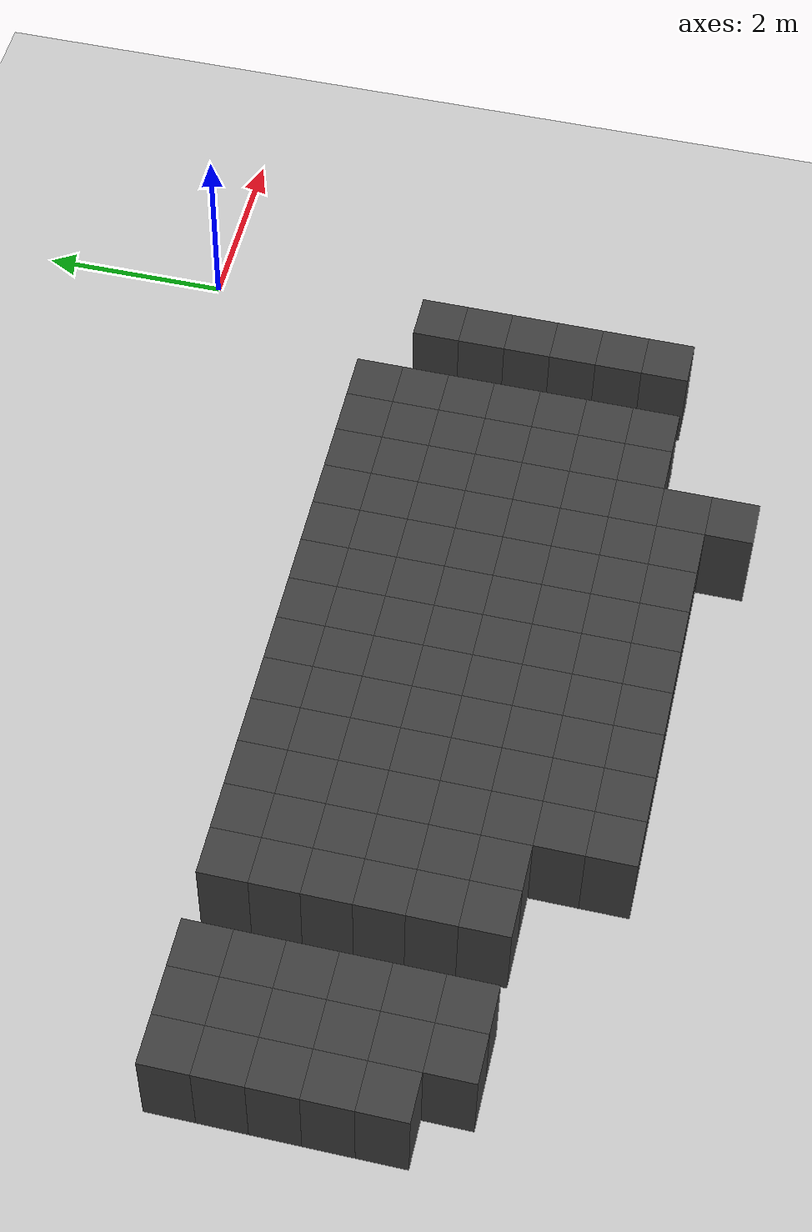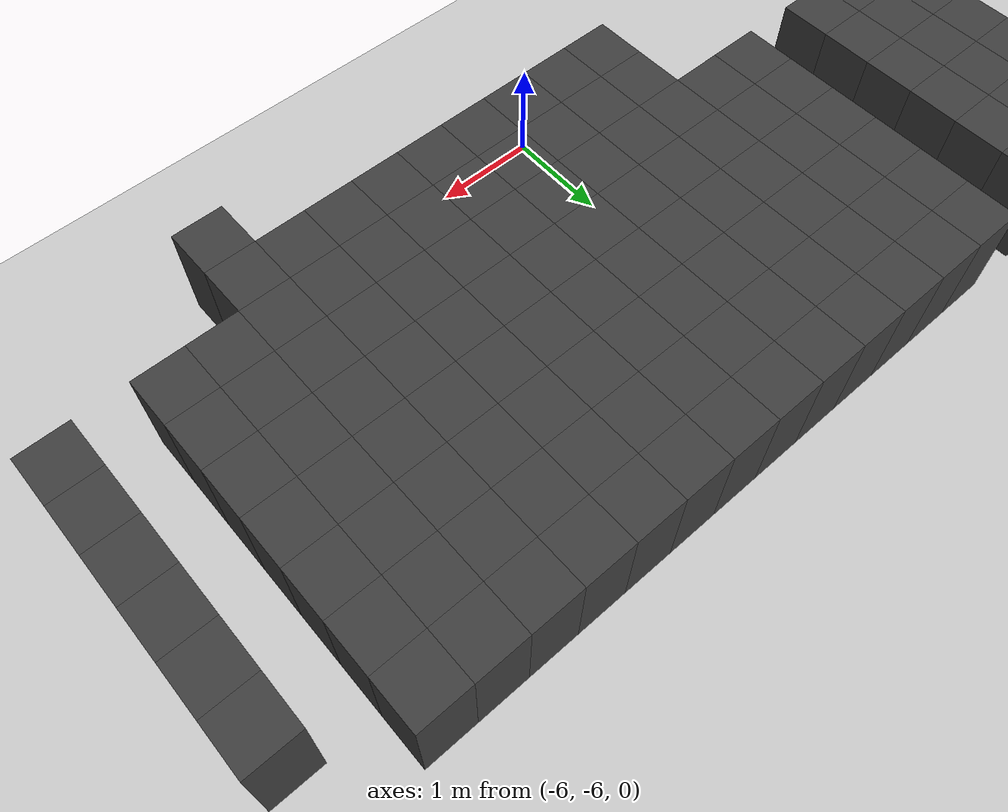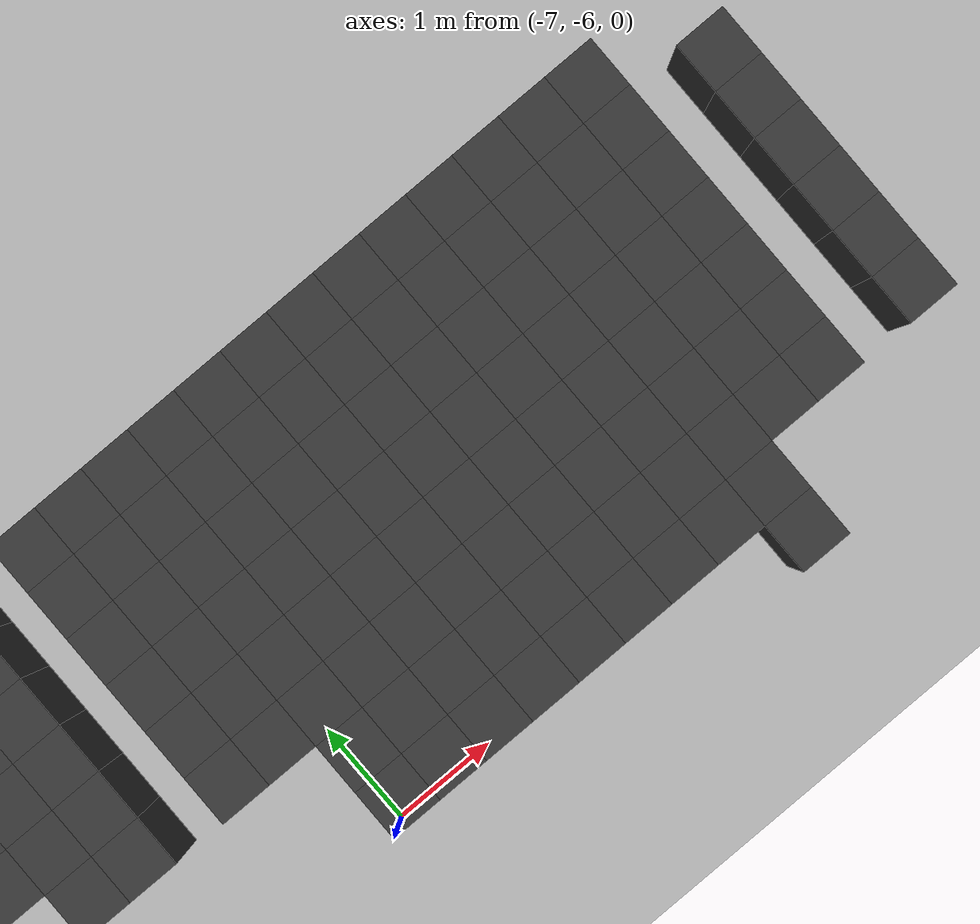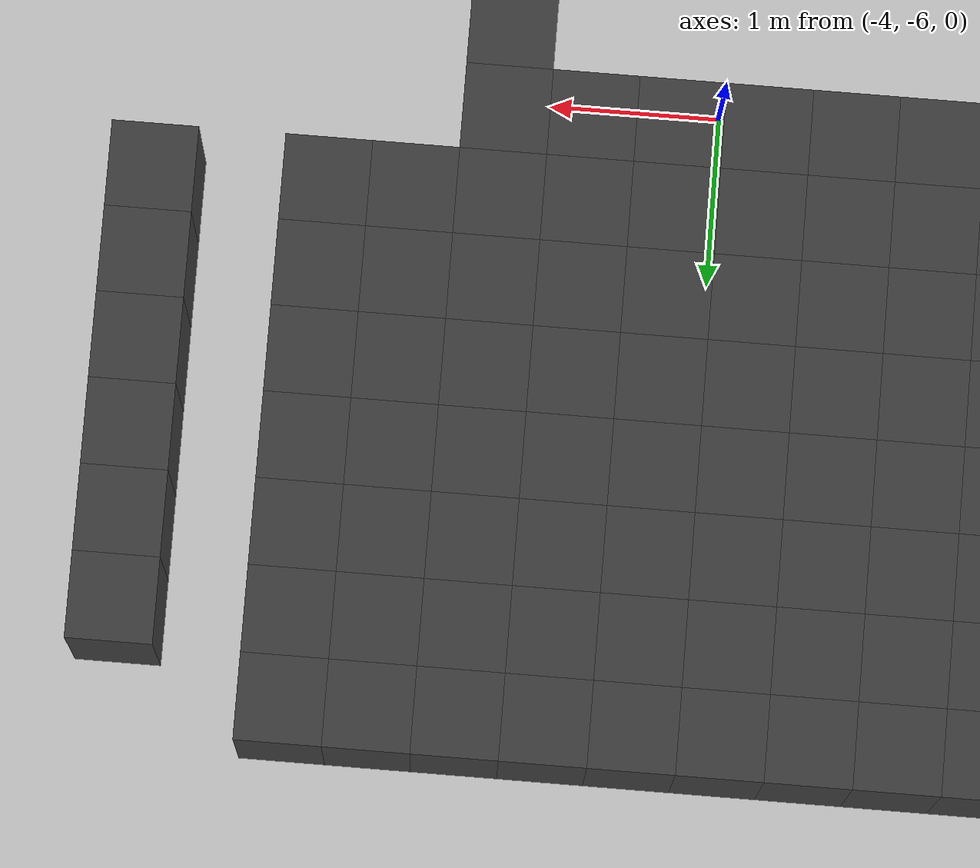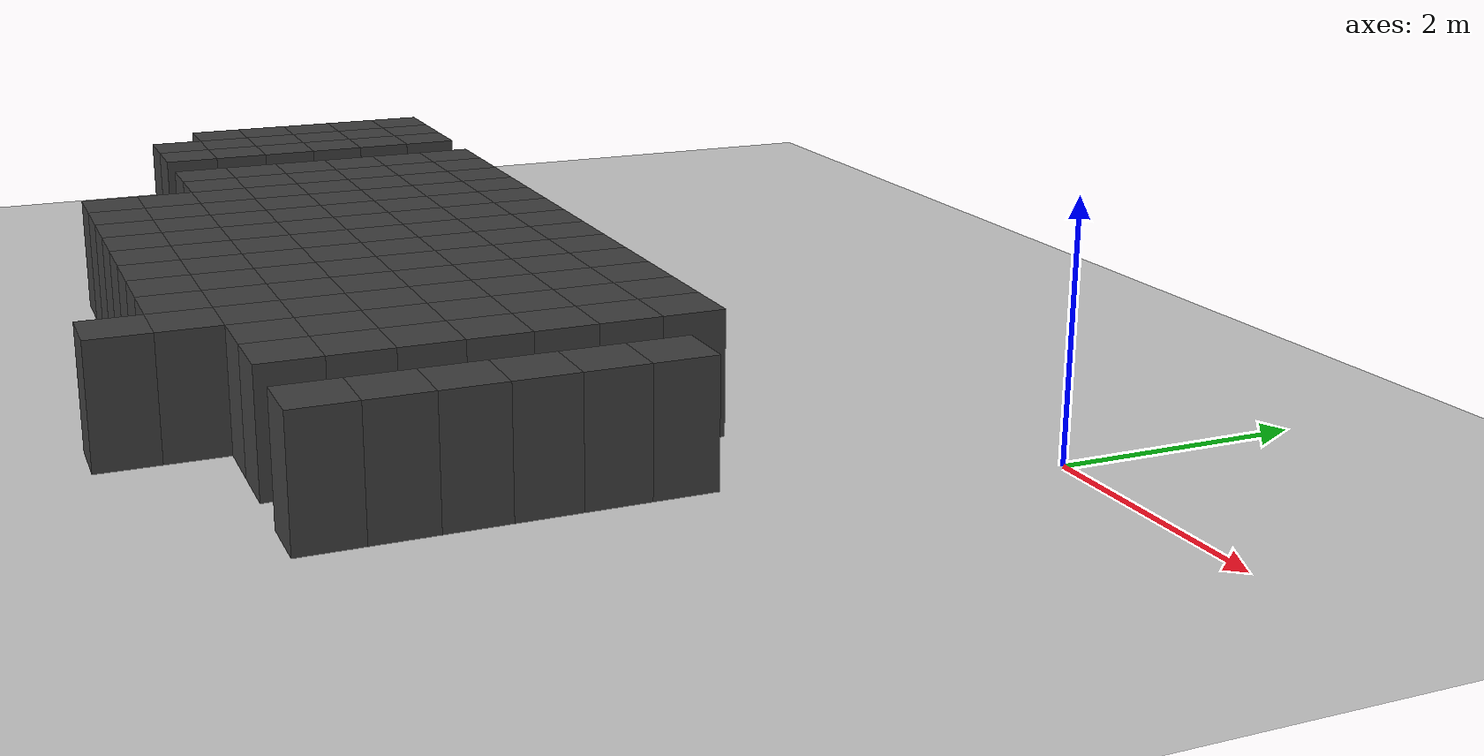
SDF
<sdf version="1.7">
 <world name="map_14547">
  <model name="ground_plane">
   <static>true</static>
   <link name="link">
    <collision name="collision">
     <geometry><plane><normal>0 0 1</normal><size>200 200</size></plane></geometry>
    </collision>
    <visual name="visual">
     <geometry><plane><normal>0 0 1</normal><size>200 200</size></plane></geometry>
     <material><ambient>0.8 0.8 0.8 1</ambient><diffuse>0.8 0.8 0.8 1</diffuse></material>
    </visual>
   </link>
  </model>
  <model name="maze_environment">
   <static>true</static>
   <link name="wall_1032">
    <pose>-9.750 -2.250 0.500 0 0 0</pose>
    <collision name="col"><geometry><box><size>0.5 0.5 1.0</size></box></geometry></collision>
    <visual name="vis">
     <geometry><box><size>0.5 0.5 1.0</size></box></geometry>
     <material><ambient>0.15 0.15 0.15 1</ambient><diffuse>0.25 0.25 0.25 1</diffuse></material>
    </visual>
   </link>
   <link name="wall_1033">
    <pose>-9.250 -2.250 0.500 0 0 0</pose>
    <collision name="col"><geometry><box><size>0.5 0.5 1.0</size></box></geometry></collision>
    <visual name="vis">
     <geometry><box><size>0.5 0.5 1.0</size></box></geometry>
     <material><ambient>0.15 0.15 0.15 1</ambient><diffuse>0.25 0.25 0.25 1</diffuse></material>
    </visual>
   </link>
   <link name="wall_1034">
    <pose>-8.750 -2.250 0.500 0 0 0</pose>
    <collision name="col"><geometry><box><size>0.5 0.5 1.0</size></box></geometry></collision>
    <visual name="vis">
     <geometry><box><size>0.5 0.5 1.0</size></box></geometry>
     <material><ambient>0.15 0.15 0.15 1</ambient><diffuse>0.25 0.25 0.25 1</diffuse></material>
    </visual>
   </link>
   <link name="wall_1035">
    <pose>-7.750 -2.250 0.500 0 0 0</pose>
    <collision name="col"><geometry><box><size>0.5 0.5 1.0</size></box></geometry></collision>
    <visual name="vis">
     <geometry><box><size>0.5 0.5 1.0</size></box></geometry>
     <material><ambient>0.15 0.15 0.15 1</ambient><diffuse>0.25 0.25 0.25 1</diffuse></material>
    </visual>
   </link>
   <link name="wall_1036">
    <pose>-7.250 -2.250 0.500 0 0 0</pose>
    <collision name="col"><geometry><box><size>0.5 0.5 1.0</size></box></geometry></collision>
    <visual name="vis">
     <geometry><box><size>0.5 0.5 1.0</size></box></geometry>
     <material><ambient>0.15 0.15 0.15 1</ambient><diffuse>0.25 0.25 0.25 1</diffuse></material>
    </visual>
   </link>
   <link name="wall_1037">
    <pose>-6.750 -2.250 0.500 0 0 0</pose>
    <collision name="col"><geometry><box><size>0.5 0.5 1.0</size></box></geometry></collision>
    <visual name="vis">
     <geometry><box><size>0.5 0.5 1.0</size></box></geometry>
     <material><ambient>0.15 0.15 0.15 1</ambient><diffuse>0.25 0.25 0.25 1</diffuse></material>
    </visual>
   </link>
   <link name="wall_1038">
    <pose>-6.250 -2.250 0.500 0 0 0</pose>
    <collision name="col"><geometry><box><size>0.5 0.5 1.0</size></box></geometry></collision>
    <visual name="vis">
     <geometry><box><size>0.5 0.5 1.0</size></box></geometry>
     <material><ambient>0.15 0.15 0.15 1</ambient><diffuse>0.25 0.25 0.25 1</diffuse></material>
    </visual>
   </link>
   <link name="wall_1039">
    <pose>-5.750 -2.250 0.500 0 0 0</pose>
    <collision name="col"><geometry><box><size>0.5 0.5 1.0</size></box></geometry></collision>
    <visual name="vis">
     <geometry><box><size>0.5 0.5 1.0</size></box></geometry>
     <material><ambient>0.15 0.15 0.15 1</ambient><diffuse>0.25 0.25 0.25 1</diffuse></material>
    </visual>
   </link>
   <link name="wall_1040">
    <pose>-5.250 -2.250 0.500 0 0 0</pose>
    <collision name="col"><geometry><box><size>0.5 0.5 1.0</size></box></geometry></collision>
    <visual name="vis">
     <geometry><box><size>0.5 0.5 1.0</size></box></geometry>
     <material><ambient>0.15 0.15 0.15 1</ambient><diffuse>0.25 0.25 0.25 1</diffuse></material>
    </visual>
   </link>
   <link name="wall_1041">
    <pose>-4.750 -2.250 0.500 0 0 0</pose>
    <collision name="col"><geometry><box><size>0.5 0.5 1.0</size></box></geometry></collision>
    <visual name="vis">
     <geometry><box><size>0.5 0.5 1.0</size></box></geometry>
     <material><ambient>0.15 0.15 0.15 1</ambient><diffuse>0.25 0.25 0.25 1</diffuse></material>
    </visual>
   </link>
   <link name="wall_1042">
    <pose>-4.250 -2.250 0.500 0 0 0</pose>
    <collision name="col"><geometry><box><size>0.5 0.5 1.0</size></box></geometry></collision>
    <visual name="vis">
     <geometry><box><size>0.5 0.5 1.0</size></box></geometry>
     <material><ambient>0.15 0.15 0.15 1</ambient><diffuse>0.25 0.25 0.25 1</diffuse></material>
    </visual>
   </link>
   <link name="wall_1043">
    <pose>-3.750 -2.250 0.500 0 0 0</pose>
    <collision name="col"><geometry><box><size>0.5 0.5 1.0</size></box></geometry></collision>
    <visual name="vis">
     <geometry><box><size>0.5 0.5 1.0</size></box></geometry>
     <material><ambient>0.15 0.15 0.15 1</ambient><diffuse>0.25 0.25 0.25 1</diffuse></material>
    </visual>
   </link>
   <link name="wall_1044">
    <pose>-3.250 -2.250 0.500 0 0 0</pose>
    <collision name="col"><geometry><box><size>0.5 0.5 1.0</size></box></geometry></collision>
    <visual name="vis">
     <geometry><box><size>0.5 0.5 1.0</size></box></geometry>
     <material><ambient>0.15 0.15 0.15 1</ambient><diffuse>0.25 0.25 0.25 1</diffuse></material>
    </visual>
   </link>
   <link name="wall_1045">
    <pose>-2.750 -2.250 0.500 0 0 0</pose>
    <collision name="col"><geometry><box><size>0.5 0.5 1.0</size></box></geometry></collision>
    <visual name="vis">
     <geometry><box><size>0.5 0.5 1.0</size></box></geometry>
     <material><ambient>0.15 0.15 0.15 1</ambient><diffuse>0.25 0.25 0.25 1</diffuse></material>
    </visual>
   </link>
   <link name="wall_1046">
    <pose>-2.250 -2.250 0.500 0 0 0</pose>
    <collision name="col"><geometry><box><size>0.5 0.5 1.0</size></box></geometry></collision>
    <visual name="vis">
     <geometry><box><size>0.5 0.5 1.0</size></box></geometry>
     <material><ambient>0.15 0.15 0.15 1</ambient><diffuse>0.25 0.25 0.25 1</diffuse></material>
    </visual>
   </link>
   <link name="wall_1047">
    <pose>-1.750 -2.250 0.500 0 0 0</pose>
    <collision name="col"><geometry><box><size>0.5 0.5 1.0</size></box></geometry></collision>
    <visual name="vis">
     <geometry><box><size>0.5 0.5 1.0</size></box></geometry>
     <material><ambient>0.15 0.15 0.15 1</ambient><diffuse>0.25 0.25 0.25 1</diffuse></material>
    </visual>
   </link>
   <link name="wall_1062">
    <pose>-9.750 -2.750 0.500 0 0 0</pose>
    <collision name="col"><geometry><box><size>0.5 0.5 1.0</size></box></geometry></collision>
    <visual name="vis">
     <geometry><box><size>0.5 0.5 1.0</size></box></geometry>
     <material><ambient>0.15 0.15 0.15 1</ambient><diffuse>0.25 0.25 0.25 1</diffuse></material>
    </visual>
   </link>
   <link name="wall_1063">
    <pose>-9.250 -2.750 0.500 0 0 0</pose>
    <collision name="col"><geometry><box><size>0.5 0.5 1.0</size></box></geometry></collision>
    <visual name="vis">
     <geometry><box><size>0.5 0.5 1.0</size></box></geometry>
     <material><ambient>0.15 0.15 0.15 1</ambient><diffuse>0.25 0.25 0.25 1</diffuse></material>
    </visual>
   </link>
   <link name="wall_1064">
    <pose>-8.750 -2.750 0.500 0 0 0</pose>
    <collision name="col"><geometry><box><size>0.5 0.5 1.0</size></box></geometry></collision>
    <visual name="vis">
     <geometry><box><size>0.5 0.5 1.0</size></box></geometry>
     <material><ambient>0.15 0.15 0.15 1</ambient><diffuse>0.25 0.25 0.25 1</diffuse></material>
    </visual>
   </link>
   <link name="wall_1065">
    <pose>-7.750 -2.750 0.500 0 0 0</pose>
    <collision name="col"><geometry><box><size>0.5 0.5 1.0</size></box></geometry></collision>
    <visual name="vis">
     <geometry><box><size>0.5 0.5 1.0</size></box></geometry>
     <material><ambient>0.15 0.15 0.15 1</ambient><diffuse>0.25 0.25 0.25 1</diffuse></material>
    </visual>
   </link>
   <link name="wall_1066">
    <pose>-7.250 -2.750 0.500 0 0 0</pose>
    <collision name="col"><geometry><box><size>0.5 0.5 1.0</size></box></geometry></collision>
    <visual name="vis">
     <geometry><box><size>0.5 0.5 1.0</size></box></geometry>
     <material><ambient>0.15 0.15 0.15 1</ambient><diffuse>0.25 0.25 0.25 1</diffuse></material>
    </visual>
   </link>
   <link name="wall_1067">
    <pose>-6.750 -2.750 0.500 0 0 0</pose>
    <collision name="col"><geometry><box><size>0.5 0.5 1.0</size></box></geometry></collision>
    <visual name="vis">
     <geometry><box><size>0.5 0.5 1.0</size></box></geometry>
     <material><ambient>0.15 0.15 0.15 1</ambient><diffuse>0.25 0.25 0.25 1</diffuse></material>
    </visual>
   </link>
   <link name="wall_1068">
    <pose>-6.250 -2.750 0.500 0 0 0</pose>
    <collision name="col"><geometry><box><size>0.5 0.5 1.0</size></box></geometry></collision>
    <visual name="vis">
     <geometry><box><size>0.5 0.5 1.0</size></box></geometry>
     <material><ambient>0.15 0.15 0.15 1</ambient><diffuse>0.25 0.25 0.25 1</diffuse></material>
    </visual>
   </link>
   <link name="wall_1069">
    <pose>-5.750 -2.750 0.500 0 0 0</pose>
    <collision name="col"><geometry><box><size>0.5 0.5 1.0</size></box></geometry></collision>
    <visual name="vis">
     <geometry><box><size>0.5 0.5 1.0</size></box></geometry>
     <material><ambient>0.15 0.15 0.15 1</ambient><diffuse>0.25 0.25 0.25 1</diffuse></material>
    </visual>
   </link>
   <link name="wall_1070">
    <pose>-5.250 -2.750 0.500 0 0 0</pose>
    <collision name="col"><geometry><box><size>0.5 0.5 1.0</size></box></geometry></collision>
    <visual name="vis">
     <geometry><box><size>0.5 0.5 1.0</size></box></geometry>
     <material><ambient>0.15 0.15 0.15 1</ambient><diffuse>0.25 0.25 0.25 1</diffuse></material>
    </visual>
   </link>
   <link name="wall_1071">
    <pose>-4.750 -2.750 0.500 0 0 0</pose>
    <collision name="col"><geometry><box><size>0.5 0.5 1.0</size></box></geometry></collision>
    <visual name="vis">
     <geometry><box><size>0.5 0.5 1.0</size></box></geometry>
     <material><ambient>0.15 0.15 0.15 1</ambient><diffuse>0.25 0.25 0.25 1</diffuse></material>
    </visual>
   </link>
   <link name="wall_1072">
    <pose>-4.250 -2.750 0.500 0 0 0</pose>
    <collision name="col"><geometry><box><size>0.5 0.5 1.0</size></box></geometry></collision>
    <visual name="vis">
     <geometry><box><size>0.5 0.5 1.0</size></box></geometry>
     <material><ambient>0.15 0.15 0.15 1</ambient><diffuse>0.25 0.25 0.25 1</diffuse></material>
    </visual>
   </link>
   <link name="wall_1073">
    <pose>-3.750 -2.750 0.500 0 0 0</pose>
    <collision name="col"><geometry><box><size>0.5 0.5 1.0</size></box></geometry></collision>
    <visual name="vis">
     <geometry><box><size>0.5 0.5 1.0</size></box></geometry>
     <material><ambient>0.15 0.15 0.15 1</ambient><diffuse>0.25 0.25 0.25 1</diffuse></material>
    </visual>
   </link>
   <link name="wall_1074">
    <pose>-3.250 -2.750 0.500 0 0 0</pose>
    <collision name="col"><geometry><box><size>0.5 0.5 1.0</size></box></geometry></collision>
    <visual name="vis">
     <geometry><box><size>0.5 0.5 1.0</size></box></geometry>
     <material><ambient>0.15 0.15 0.15 1</ambient><diffuse>0.25 0.25 0.25 1</diffuse></material>
    </visual>
   </link>
   <link name="wall_1075">
    <pose>-2.750 -2.750 0.500 0 0 0</pose>
    <collision name="col"><geometry><box><size>0.5 0.5 1.0</size></box></geometry></collision>
    <visual name="vis">
     <geometry><box><size>0.5 0.5 1.0</size></box></geometry>
     <material><ambient>0.15 0.15 0.15 1</ambient><diffuse>0.25 0.25 0.25 1</diffuse></material>
    </visual>
   </link>
   <link name="wall_1076">
    <pose>-2.250 -2.750 0.500 0 0 0</pose>
    <collision name="col"><geometry><box><size>0.5 0.5 1.0</size></box></geometry></collision>
    <visual name="vis">
     <geometry><box><size>0.5 0.5 1.0</size></box></geometry>
     <material><ambient>0.15 0.15 0.15 1</ambient><diffuse>0.25 0.25 0.25 1</diffuse></material>
    </visual>
   </link>
   <link name="wall_1077">
    <pose>-1.750 -2.750 0.500 0 0 0</pose>
    <collision name="col"><geometry><box><size>0.5 0.5 1.0</size></box></geometry></collision>
    <visual name="vis">
     <geometry><box><size>0.5 0.5 1.0</size></box></geometry>
     <material><ambient>0.15 0.15 0.15 1</ambient><diffuse>0.25 0.25 0.25 1</diffuse></material>
    </visual>
   </link>
   <link name="wall_1078">
    <pose>-0.750 -2.750 0.500 0 0 0</pose>
    <collision name="col"><geometry><box><size>0.5 0.5 1.0</size></box></geometry></collision>
    <visual name="vis">
     <geometry><box><size>0.5 0.5 1.0</size></box></geometry>
     <material><ambient>0.15 0.15 0.15 1</ambient><diffuse>0.25 0.25 0.25 1</diffuse></material>
    </visual>
   </link>
   <link name="wall_1095">
    <pose>-9.750 -3.250 0.500 0 0 0</pose>
    <collision name="col"><geometry><box><size>0.5 0.5 1.0</size></box></geometry></collision>
    <visual name="vis">
     <geometry><box><size>0.5 0.5 1.0</size></box></geometry>
     <material><ambient>0.15 0.15 0.15 1</ambient><diffuse>0.25 0.25 0.25 1</diffuse></material>
    </visual>
   </link>
   <link name="wall_1096">
    <pose>-9.250 -3.250 0.500 0 0 0</pose>
    <collision name="col"><geometry><box><size>0.5 0.5 1.0</size></box></geometry></collision>
    <visual name="vis">
     <geometry><box><size>0.5 0.5 1.0</size></box></geometry>
     <material><ambient>0.15 0.15 0.15 1</ambient><diffuse>0.25 0.25 0.25 1</diffuse></material>
    </visual>
   </link>
   <link name="wall_1097">
    <pose>-8.750 -3.250 0.500 0 0 0</pose>
    <collision name="col"><geometry><box><size>0.5 0.5 1.0</size></box></geometry></collision>
    <visual name="vis">
     <geometry><box><size>0.5 0.5 1.0</size></box></geometry>
     <material><ambient>0.15 0.15 0.15 1</ambient><diffuse>0.25 0.25 0.25 1</diffuse></material>
    </visual>
   </link>
   <link name="wall_1098">
    <pose>-7.750 -3.250 0.500 0 0 0</pose>
    <collision name="col"><geometry><box><size>0.5 0.5 1.0</size></box></geometry></collision>
    <visual name="vis">
     <geometry><box><size>0.5 0.5 1.0</size></box></geometry>
     <material><ambient>0.15 0.15 0.15 1</ambient><diffuse>0.25 0.25 0.25 1</diffuse></material>
    </visual>
   </link>
   <link name="wall_1099">
    <pose>-7.250 -3.250 0.500 0 0 0</pose>
    <collision name="col"><geometry><box><size>0.5 0.5 1.0</size></box></geometry></collision>
    <visual name="vis">
     <geometry><box><size>0.5 0.5 1.0</size></box></geometry>
     <material><ambient>0.15 0.15 0.15 1</ambient><diffuse>0.25 0.25 0.25 1</diffuse></material>
    </visual>
   </link>
   <link name="wall_1100">
    <pose>-6.750 -3.250 0.500 0 0 0</pose>
    <collision name="col"><geometry><box><size>0.5 0.5 1.0</size></box></geometry></collision>
    <visual name="vis">
     <geometry><box><size>0.5 0.5 1.0</size></box></geometry>
     <material><ambient>0.15 0.15 0.15 1</ambient><diffuse>0.25 0.25 0.25 1</diffuse></material>
    </visual>
   </link>
   <link name="wall_1101">
    <pose>-6.250 -3.250 0.500 0 0 0</pose>
    <collision name="col"><geometry><box><size>0.5 0.5 1.0</size></box></geometry></collision>
    <visual name="vis">
     <geometry><box><size>0.5 0.5 1.0</size></box></geometry>
     <material><ambient>0.15 0.15 0.15 1</ambient><diffuse>0.25 0.25 0.25 1</diffuse></material>
    </visual>
   </link>
   <link name="wall_1102">
    <pose>-5.750 -3.250 0.500 0 0 0</pose>
    <collision name="col"><geometry><box><size>0.5 0.5 1.0</size></box></geometry></collision>
    <visual name="vis">
     <geometry><box><size>0.5 0.5 1.0</size></box></geometry>
     <material><ambient>0.15 0.15 0.15 1</ambient><diffuse>0.25 0.25 0.25 1</diffuse></material>
    </visual>
   </link>
   <link name="wall_1103">
    <pose>-5.250 -3.250 0.500 0 0 0</pose>
    <collision name="col"><geometry><box><size>0.5 0.5 1.0</size></box></geometry></collision>
    <visual name="vis">
     <geometry><box><size>0.5 0.5 1.0</size></box></geometry>
     <material><ambient>0.15 0.15 0.15 1</ambient><diffuse>0.25 0.25 0.25 1</diffuse></material>
    </visual>
   </link>
   <link name="wall_1104">
    <pose>-4.750 -3.250 0.500 0 0 0</pose>
    <collision name="col"><geometry><box><size>0.5 0.5 1.0</size></box></geometry></collision>
    <visual name="vis">
     <geometry><box><size>0.5 0.5 1.0</size></box></geometry>
     <material><ambient>0.15 0.15 0.15 1</ambient><diffuse>0.25 0.25 0.25 1</diffuse></material>
    </visual>
   </link>
   <link name="wall_1105">
    <pose>-4.250 -3.250 0.500 0 0 0</pose>
    <collision name="col"><geometry><box><size>0.5 0.5 1.0</size></box></geometry></collision>
    <visual name="vis">
     <geometry><box><size>0.5 0.5 1.0</size></box></geometry>
     <material><ambient>0.15 0.15 0.15 1</ambient><diffuse>0.25 0.25 0.25 1</diffuse></material>
    </visual>
   </link>
   <link name="wall_1106">
    <pose>-3.750 -3.250 0.500 0 0 0</pose>
    <collision name="col"><geometry><box><size>0.5 0.5 1.0</size></box></geometry></collision>
    <visual name="vis">
     <geometry><box><size>0.5 0.5 1.0</size></box></geometry>
     <material><ambient>0.15 0.15 0.15 1</ambient><diffuse>0.25 0.25 0.25 1</diffuse></material>
    </visual>
   </link>
   <link name="wall_1107">
    <pose>-3.250 -3.250 0.500 0 0 0</pose>
    <collision name="col"><geometry><box><size>0.5 0.5 1.0</size></box></geometry></collision>
    <visual name="vis">
     <geometry><box><size>0.5 0.5 1.0</size></box></geometry>
     <material><ambient>0.15 0.15 0.15 1</ambient><diffuse>0.25 0.25 0.25 1</diffuse></material>
    </visual>
   </link>
   <link name="wall_1108">
    <pose>-2.750 -3.250 0.500 0 0 0</pose>
    <collision name="col"><geometry><box><size>0.5 0.5 1.0</size></box></geometry></collision>
    <visual name="vis">
     <geometry><box><size>0.5 0.5 1.0</size></box></geometry>
     <material><ambient>0.15 0.15 0.15 1</ambient><diffuse>0.25 0.25 0.25 1</diffuse></material>
    </visual>
   </link>
   <link name="wall_1109">
    <pose>-2.250 -3.250 0.500 0 0 0</pose>
    <collision name="col"><geometry><box><size>0.5 0.5 1.0</size></box></geometry></collision>
    <visual name="vis">
     <geometry><box><size>0.5 0.5 1.0</size></box></geometry>
     <material><ambient>0.15 0.15 0.15 1</ambient><diffuse>0.25 0.25 0.25 1</diffuse></material>
    </visual>
   </link>
   <link name="wall_1110">
    <pose>-1.750 -3.250 0.500 0 0 0</pose>
    <collision name="col"><geometry><box><size>0.5 0.5 1.0</size></box></geometry></collision>
    <visual name="vis">
     <geometry><box><size>0.5 0.5 1.0</size></box></geometry>
     <material><ambient>0.15 0.15 0.15 1</ambient><diffuse>0.25 0.25 0.25 1</diffuse></material>
    </visual>
   </link>
   <link name="wall_1111">
    <pose>-0.750 -3.250 0.500 0 0 0</pose>
    <collision name="col"><geometry><box><size>0.5 0.5 1.0</size></box></geometry></collision>
    <visual name="vis">
     <geometry><box><size>0.5 0.5 1.0</size></box></geometry>
     <material><ambient>0.15 0.15 0.15 1</ambient><diffuse>0.25 0.25 0.25 1</diffuse></material>
    </visual>
   </link>
   <link name="wall_1129">
    <pose>-9.750 -3.750 0.500 0 0 0</pose>
    <collision name="col"><geometry><box><size>0.5 0.5 1.0</size></box></geometry></collision>
    <visual name="vis">
     <geometry><box><size>0.5 0.5 1.0</size></box></geometry>
     <material><ambient>0.15 0.15 0.15 1</ambient><diffuse>0.25 0.25 0.25 1</diffuse></material>
    </visual>
   </link>
   <link name="wall_1130">
    <pose>-9.250 -3.750 0.500 0 0 0</pose>
    <collision name="col"><geometry><box><size>0.5 0.5 1.0</size></box></geometry></collision>
    <visual name="vis">
     <geometry><box><size>0.5 0.5 1.0</size></box></geometry>
     <material><ambient>0.15 0.15 0.15 1</ambient><diffuse>0.25 0.25 0.25 1</diffuse></material>
    </visual>
   </link>
   <link name="wall_1131">
    <pose>-8.750 -3.750 0.500 0 0 0</pose>
    <collision name="col"><geometry><box><size>0.5 0.5 1.0</size></box></geometry></collision>
    <visual name="vis">
     <geometry><box><size>0.5 0.5 1.0</size></box></geometry>
     <material><ambient>0.15 0.15 0.15 1</ambient><diffuse>0.25 0.25 0.25 1</diffuse></material>
    </visual>
   </link>
   <link name="wall_1132">
    <pose>-7.750 -3.750 0.500 0 0 0</pose>
    <collision name="col"><geometry><box><size>0.5 0.5 1.0</size></box></geometry></collision>
    <visual name="vis">
     <geometry><box><size>0.5 0.5 1.0</size></box></geometry>
     <material><ambient>0.15 0.15 0.15 1</ambient><diffuse>0.25 0.25 0.25 1</diffuse></material>
    </visual>
   </link>
   <link name="wall_1133">
    <pose>-7.250 -3.750 0.500 0 0 0</pose>
    <collision name="col"><geometry><box><size>0.5 0.5 1.0</size></box></geometry></collision>
    <visual name="vis">
     <geometry><box><size>0.5 0.5 1.0</size></box></geometry>
     <material><ambient>0.15 0.15 0.15 1</ambient><diffuse>0.25 0.25 0.25 1</diffuse></material>
    </visual>
   </link>
   <link name="wall_1134">
    <pose>-6.750 -3.750 0.500 0 0 0</pose>
    <collision name="col"><geometry><box><size>0.5 0.5 1.0</size></box></geometry></collision>
    <visual name="vis">
     <geometry><box><size>0.5 0.5 1.0</size></box></geometry>
     <material><ambient>0.15 0.15 0.15 1</ambient><diffuse>0.25 0.25 0.25 1</diffuse></material>
    </visual>
   </link>
   <link name="wall_1135">
    <pose>-6.250 -3.750 0.500 0 0 0</pose>
    <collision name="col"><geometry><box><size>0.5 0.5 1.0</size></box></geometry></collision>
    <visual name="vis">
     <geometry><box><size>0.5 0.5 1.0</size></box></geometry>
     <material><ambient>0.15 0.15 0.15 1</ambient><diffuse>0.25 0.25 0.25 1</diffuse></material>
    </visual>
   </link>
   <link name="wall_1136">
    <pose>-5.750 -3.750 0.500 0 0 0</pose>
    <collision name="col"><geometry><box><size>0.5 0.5 1.0</size></box></geometry></collision>
    <visual name="vis">
     <geometry><box><size>0.5 0.5 1.0</size></box></geometry>
     <material><ambient>0.15 0.15 0.15 1</ambient><diffuse>0.25 0.25 0.25 1</diffuse></material>
    </visual>
   </link>
   <link name="wall_1137">
    <pose>-5.250 -3.750 0.500 0 0 0</pose>
    <collision name="col"><geometry><box><size>0.5 0.5 1.0</size></box></geometry></collision>
    <visual name="vis">
     <geometry><box><size>0.5 0.5 1.0</size></box></geometry>
     <material><ambient>0.15 0.15 0.15 1</ambient><diffuse>0.25 0.25 0.25 1</diffuse></material>
    </visual>
   </link>
   <link name="wall_1138">
    <pose>-4.750 -3.750 0.500 0 0 0</pose>
    <collision name="col"><geometry><box><size>0.5 0.5 1.0</size></box></geometry></collision>
    <visual name="vis">
     <geometry><box><size>0.5 0.5 1.0</size></box></geometry>
     <material><ambient>0.15 0.15 0.15 1</ambient><diffuse>0.25 0.25 0.25 1</diffuse></material>
    </visual>
   </link>
   <link name="wall_1139">
    <pose>-4.250 -3.750 0.500 0 0 0</pose>
    <collision name="col"><geometry><box><size>0.5 0.5 1.0</size></box></geometry></collision>
    <visual name="vis">
     <geometry><box><size>0.5 0.5 1.0</size></box></geometry>
     <material><ambient>0.15 0.15 0.15 1</ambient><diffuse>0.25 0.25 0.25 1</diffuse></material>
    </visual>
   </link>
   <link name="wall_1140">
    <pose>-3.750 -3.750 0.500 0 0 0</pose>
    <collision name="col"><geometry><box><size>0.5 0.5 1.0</size></box></geometry></collision>
    <visual name="vis">
     <geometry><box><size>0.5 0.5 1.0</size></box></geometry>
     <material><ambient>0.15 0.15 0.15 1</ambient><diffuse>0.25 0.25 0.25 1</diffuse></material>
    </visual>
   </link>
   <link name="wall_1141">
    <pose>-3.250 -3.750 0.500 0 0 0</pose>
    <collision name="col"><geometry><box><size>0.5 0.5 1.0</size></box></geometry></collision>
    <visual name="vis">
     <geometry><box><size>0.5 0.5 1.0</size></box></geometry>
     <material><ambient>0.15 0.15 0.15 1</ambient><diffuse>0.25 0.25 0.25 1</diffuse></material>
    </visual>
   </link>
   <link name="wall_1142">
    <pose>-2.750 -3.750 0.500 0 0 0</pose>
    <collision name="col"><geometry><box><size>0.5 0.5 1.0</size></box></geometry></collision>
    <visual name="vis">
     <geometry><box><size>0.5 0.5 1.0</size></box></geometry>
     <material><ambient>0.15 0.15 0.15 1</ambient><diffuse>0.25 0.25 0.25 1</diffuse></material>
    </visual>
   </link>
   <link name="wall_1143">
    <pose>-2.250 -3.750 0.500 0 0 0</pose>
    <collision name="col"><geometry><box><size>0.5 0.5 1.0</size></box></geometry></collision>
    <visual name="vis">
     <geometry><box><size>0.5 0.5 1.0</size></box></geometry>
     <material><ambient>0.15 0.15 0.15 1</ambient><diffuse>0.25 0.25 0.25 1</diffuse></material>
    </visual>
   </link>
   <link name="wall_1144">
    <pose>-1.750 -3.750 0.500 0 0 0</pose>
    <collision name="col"><geometry><box><size>0.5 0.5 1.0</size></box></geometry></collision>
    <visual name="vis">
     <geometry><box><size>0.5 0.5 1.0</size></box></geometry>
     <material><ambient>0.15 0.15 0.15 1</ambient><diffuse>0.25 0.25 0.25 1</diffuse></material>
    </visual>
   </link>
   <link name="wall_1145">
    <pose>-0.750 -3.750 0.500 0 0 0</pose>
    <collision name="col"><geometry><box><size>0.5 0.5 1.0</size></box></geometry></collision>
    <visual name="vis">
     <geometry><box><size>0.5 0.5 1.0</size></box></geometry>
     <material><ambient>0.15 0.15 0.15 1</ambient><diffuse>0.25 0.25 0.25 1</diffuse></material>
    </visual>
   </link>
   <link name="wall_1165">
    <pose>-9.750 -4.250 0.500 0 0 0</pose>
    <collision name="col"><geometry><box><size>0.5 0.5 1.0</size></box></geometry></collision>
    <visual name="vis">
     <geometry><box><size>0.5 0.5 1.0</size></box></geometry>
     <material><ambient>0.15 0.15 0.15 1</ambient><diffuse>0.25 0.25 0.25 1</diffuse></material>
    </visual>
   </link>
   <link name="wall_1166">
    <pose>-9.250 -4.250 0.500 0 0 0</pose>
    <collision name="col"><geometry><box><size>0.5 0.5 1.0</size></box></geometry></collision>
    <visual name="vis">
     <geometry><box><size>0.5 0.5 1.0</size></box></geometry>
     <material><ambient>0.15 0.15 0.15 1</ambient><diffuse>0.25 0.25 0.25 1</diffuse></material>
    </visual>
   </link>
   <link name="wall_1167">
    <pose>-8.750 -4.250 0.500 0 0 0</pose>
    <collision name="col"><geometry><box><size>0.5 0.5 1.0</size></box></geometry></collision>
    <visual name="vis">
     <geometry><box><size>0.5 0.5 1.0</size></box></geometry>
     <material><ambient>0.15 0.15 0.15 1</ambient><diffuse>0.25 0.25 0.25 1</diffuse></material>
    </visual>
   </link>
   <link name="wall_1168">
    <pose>-7.750 -4.250 0.500 0 0 0</pose>
    <collision name="col"><geometry><box><size>0.5 0.5 1.0</size></box></geometry></collision>
    <visual name="vis">
     <geometry><box><size>0.5 0.5 1.0</size></box></geometry>
     <material><ambient>0.15 0.15 0.15 1</ambient><diffuse>0.25 0.25 0.25 1</diffuse></material>
    </visual>
   </link>
   <link name="wall_1169">
    <pose>-7.250 -4.250 0.500 0 0 0</pose>
    <collision name="col"><geometry><box><size>0.5 0.5 1.0</size></box></geometry></collision>
    <visual name="vis">
     <geometry><box><size>0.5 0.5 1.0</size></box></geometry>
     <material><ambient>0.15 0.15 0.15 1</ambient><diffuse>0.25 0.25 0.25 1</diffuse></material>
    </visual>
   </link>
   <link name="wall_1170">
    <pose>-6.750 -4.250 0.500 0 0 0</pose>
    <collision name="col"><geometry><box><size>0.5 0.5 1.0</size></box></geometry></collision>
    <visual name="vis">
     <geometry><box><size>0.5 0.5 1.0</size></box></geometry>
     <material><ambient>0.15 0.15 0.15 1</ambient><diffuse>0.25 0.25 0.25 1</diffuse></material>
    </visual>
   </link>
   <link name="wall_1171">
    <pose>-6.250 -4.250 0.500 0 0 0</pose>
    <collision name="col"><geometry><box><size>0.5 0.5 1.0</size></box></geometry></collision>
    <visual name="vis">
     <geometry><box><size>0.5 0.5 1.0</size></box></geometry>
     <material><ambient>0.15 0.15 0.15 1</ambient><diffuse>0.25 0.25 0.25 1</diffuse></material>
    </visual>
   </link>
   <link name="wall_1172">
    <pose>-5.750 -4.250 0.500 0 0 0</pose>
    <collision name="col"><geometry><box><size>0.5 0.5 1.0</size></box></geometry></collision>
    <visual name="vis">
     <geometry><box><size>0.5 0.5 1.0</size></box></geometry>
     <material><ambient>0.15 0.15 0.15 1</ambient><diffuse>0.25 0.25 0.25 1</diffuse></material>
    </visual>
   </link>
   <link name="wall_1173">
    <pose>-5.250 -4.250 0.500 0 0 0</pose>
    <collision name="col"><geometry><box><size>0.5 0.5 1.0</size></box></geometry></collision>
    <visual name="vis">
     <geometry><box><size>0.5 0.5 1.0</size></box></geometry>
     <material><ambient>0.15 0.15 0.15 1</ambient><diffuse>0.25 0.25 0.25 1</diffuse></material>
    </visual>
   </link>
   <link name="wall_1174">
    <pose>-4.750 -4.250 0.500 0 0 0</pose>
    <collision name="col"><geometry><box><size>0.5 0.5 1.0</size></box></geometry></collision>
    <visual name="vis">
     <geometry><box><size>0.5 0.5 1.0</size></box></geometry>
     <material><ambient>0.15 0.15 0.15 1</ambient><diffuse>0.25 0.25 0.25 1</diffuse></material>
    </visual>
   </link>
   <link name="wall_1175">
    <pose>-4.250 -4.250 0.500 0 0 0</pose>
    <collision name="col"><geometry><box><size>0.5 0.5 1.0</size></box></geometry></collision>
    <visual name="vis">
     <geometry><box><size>0.5 0.5 1.0</size></box></geometry>
     <material><ambient>0.15 0.15 0.15 1</ambient><diffuse>0.25 0.25 0.25 1</diffuse></material>
    </visual>
   </link>
   <link name="wall_1176">
    <pose>-3.750 -4.250 0.500 0 0 0</pose>
    <collision name="col"><geometry><box><size>0.5 0.5 1.0</size></box></geometry></collision>
    <visual name="vis">
     <geometry><box><size>0.5 0.5 1.0</size></box></geometry>
     <material><ambient>0.15 0.15 0.15 1</ambient><diffuse>0.25 0.25 0.25 1</diffuse></material>
    </visual>
   </link>
   <link name="wall_1177">
    <pose>-3.250 -4.250 0.500 0 0 0</pose>
    <collision name="col"><geometry><box><size>0.5 0.5 1.0</size></box></geometry></collision>
    <visual name="vis">
     <geometry><box><size>0.5 0.5 1.0</size></box></geometry>
     <material><ambient>0.15 0.15 0.15 1</ambient><diffuse>0.25 0.25 0.25 1</diffuse></material>
    </visual>
   </link>
   <link name="wall_1178">
    <pose>-2.750 -4.250 0.500 0 0 0</pose>
    <collision name="col"><geometry><box><size>0.5 0.5 1.0</size></box></geometry></collision>
    <visual name="vis">
     <geometry><box><size>0.5 0.5 1.0</size></box></geometry>
     <material><ambient>0.15 0.15 0.15 1</ambient><diffuse>0.25 0.25 0.25 1</diffuse></material>
    </visual>
   </link>
   <link name="wall_1179">
    <pose>-2.250 -4.250 0.500 0 0 0</pose>
    <collision name="col"><geometry><box><size>0.5 0.5 1.0</size></box></geometry></collision>
    <visual name="vis">
     <geometry><box><size>0.5 0.5 1.0</size></box></geometry>
     <material><ambient>0.15 0.15 0.15 1</ambient><diffuse>0.25 0.25 0.25 1</diffuse></material>
    </visual>
   </link>
   <link name="wall_1180">
    <pose>-1.750 -4.250 0.500 0 0 0</pose>
    <collision name="col"><geometry><box><size>0.5 0.5 1.0</size></box></geometry></collision>
    <visual name="vis">
     <geometry><box><size>0.5 0.5 1.0</size></box></geometry>
     <material><ambient>0.15 0.15 0.15 1</ambient><diffuse>0.25 0.25 0.25 1</diffuse></material>
    </visual>
   </link>
   <link name="wall_1181">
    <pose>-0.750 -4.250 0.500 0 0 0</pose>
    <collision name="col"><geometry><box><size>0.5 0.5 1.0</size></box></geometry></collision>
    <visual name="vis">
     <geometry><box><size>0.5 0.5 1.0</size></box></geometry>
     <material><ambient>0.15 0.15 0.15 1</ambient><diffuse>0.25 0.25 0.25 1</diffuse></material>
    </visual>
   </link>
   <link name="wall_1203">
    <pose>-9.250 -4.750 0.500 0 0 0</pose>
    <collision name="col"><geometry><box><size>0.5 0.5 1.0</size></box></geometry></collision>
    <visual name="vis">
     <geometry><box><size>0.5 0.5 1.0</size></box></geometry>
     <material><ambient>0.15 0.15 0.15 1</ambient><diffuse>0.25 0.25 0.25 1</diffuse></material>
    </visual>
   </link>
   <link name="wall_1204">
    <pose>-8.750 -4.750 0.500 0 0 0</pose>
    <collision name="col"><geometry><box><size>0.5 0.5 1.0</size></box></geometry></collision>
    <visual name="vis">
     <geometry><box><size>0.5 0.5 1.0</size></box></geometry>
     <material><ambient>0.15 0.15 0.15 1</ambient><diffuse>0.25 0.25 0.25 1</diffuse></material>
    </visual>
   </link>
   <link name="wall_1205">
    <pose>-7.750 -4.750 0.500 0 0 0</pose>
    <collision name="col"><geometry><box><size>0.5 0.5 1.0</size></box></geometry></collision>
    <visual name="vis">
     <geometry><box><size>0.5 0.5 1.0</size></box></geometry>
     <material><ambient>0.15 0.15 0.15 1</ambient><diffuse>0.25 0.25 0.25 1</diffuse></material>
    </visual>
   </link>
   <link name="wall_1206">
    <pose>-7.250 -4.750 0.500 0 0 0</pose>
    <collision name="col"><geometry><box><size>0.5 0.5 1.0</size></box></geometry></collision>
    <visual name="vis">
     <geometry><box><size>0.5 0.5 1.0</size></box></geometry>
     <material><ambient>0.15 0.15 0.15 1</ambient><diffuse>0.25 0.25 0.25 1</diffuse></material>
    </visual>
   </link>
   <link name="wall_1207">
    <pose>-6.750 -4.750 0.500 0 0 0</pose>
    <collision name="col"><geometry><box><size>0.5 0.5 1.0</size></box></geometry></collision>
    <visual name="vis">
     <geometry><box><size>0.5 0.5 1.0</size></box></geometry>
     <material><ambient>0.15 0.15 0.15 1</ambient><diffuse>0.25 0.25 0.25 1</diffuse></material>
    </visual>
   </link>
   <link name="wall_1208">
    <pose>-6.250 -4.750 0.500 0 0 0</pose>
    <collision name="col"><geometry><box><size>0.5 0.5 1.0</size></box></geometry></collision>
    <visual name="vis">
     <geometry><box><size>0.5 0.5 1.0</size></box></geometry>
     <material><ambient>0.15 0.15 0.15 1</ambient><diffuse>0.25 0.25 0.25 1</diffuse></material>
    </visual>
   </link>
   <link name="wall_1209">
    <pose>-5.750 -4.750 0.500 0 0 0</pose>
    <collision name="col"><geometry><box><size>0.5 0.5 1.0</size></box></geometry></collision>
    <visual name="vis">
     <geometry><box><size>0.5 0.5 1.0</size></box></geometry>
     <material><ambient>0.15 0.15 0.15 1</ambient><diffuse>0.25 0.25 0.25 1</diffuse></material>
    </visual>
   </link>
   <link name="wall_1210">
    <pose>-5.250 -4.750 0.500 0 0 0</pose>
    <collision name="col"><geometry><box><size>0.5 0.5 1.0</size></box></geometry></collision>
    <visual name="vis">
     <geometry><box><size>0.5 0.5 1.0</size></box></geometry>
     <material><ambient>0.15 0.15 0.15 1</ambient><diffuse>0.25 0.25 0.25 1</diffuse></material>
    </visual>
   </link>
   <link name="wall_1211">
    <pose>-4.750 -4.750 0.500 0 0 0</pose>
    <collision name="col"><geometry><box><size>0.5 0.5 1.0</size></box></geometry></collision>
    <visual name="vis">
     <geometry><box><size>0.5 0.5 1.0</size></box></geometry>
     <material><ambient>0.15 0.15 0.15 1</ambient><diffuse>0.25 0.25 0.25 1</diffuse></material>
    </visual>
   </link>
   <link name="wall_1212">
    <pose>-4.250 -4.750 0.500 0 0 0</pose>
    <collision name="col"><geometry><box><size>0.5 0.5 1.0</size></box></geometry></collision>
    <visual name="vis">
     <geometry><box><size>0.5 0.5 1.0</size></box></geometry>
     <material><ambient>0.15 0.15 0.15 1</ambient><diffuse>0.25 0.25 0.25 1</diffuse></material>
    </visual>
   </link>
   <link name="wall_1213">
    <pose>-3.750 -4.750 0.500 0 0 0</pose>
    <collision name="col"><geometry><box><size>0.5 0.5 1.0</size></box></geometry></collision>
    <visual name="vis">
     <geometry><box><size>0.5 0.5 1.0</size></box></geometry>
     <material><ambient>0.15 0.15 0.15 1</ambient><diffuse>0.25 0.25 0.25 1</diffuse></material>
    </visual>
   </link>
   <link name="wall_1214">
    <pose>-3.250 -4.750 0.500 0 0 0</pose>
    <collision name="col"><geometry><box><size>0.5 0.5 1.0</size></box></geometry></collision>
    <visual name="vis">
     <geometry><box><size>0.5 0.5 1.0</size></box></geometry>
     <material><ambient>0.15 0.15 0.15 1</ambient><diffuse>0.25 0.25 0.25 1</diffuse></material>
    </visual>
   </link>
   <link name="wall_1215">
    <pose>-2.750 -4.750 0.500 0 0 0</pose>
    <collision name="col"><geometry><box><size>0.5 0.5 1.0</size></box></geometry></collision>
    <visual name="vis">
     <geometry><box><size>0.5 0.5 1.0</size></box></geometry>
     <material><ambient>0.15 0.15 0.15 1</ambient><diffuse>0.25 0.25 0.25 1</diffuse></material>
    </visual>
   </link>
   <link name="wall_1216">
    <pose>-2.250 -4.750 0.500 0 0 0</pose>
    <collision name="col"><geometry><box><size>0.5 0.5 1.0</size></box></geometry></collision>
    <visual name="vis">
     <geometry><box><size>0.5 0.5 1.0</size></box></geometry>
     <material><ambient>0.15 0.15 0.15 1</ambient><diffuse>0.25 0.25 0.25 1</diffuse></material>
    </visual>
   </link>
   <link name="wall_1217">
    <pose>-1.750 -4.750 0.500 0 0 0</pose>
    <collision name="col"><geometry><box><size>0.5 0.5 1.0</size></box></geometry></collision>
    <visual name="vis">
     <geometry><box><size>0.5 0.5 1.0</size></box></geometry>
     <material><ambient>0.15 0.15 0.15 1</ambient><diffuse>0.25 0.25 0.25 1</diffuse></material>
    </visual>
   </link>
   <link name="wall_1218">
    <pose>-0.750 -4.750 0.500 0 0 0</pose>
    <collision name="col"><geometry><box><size>0.5 0.5 1.0</size></box></geometry></collision>
    <visual name="vis">
     <geometry><box><size>0.5 0.5 1.0</size></box></geometry>
     <material><ambient>0.15 0.15 0.15 1</ambient><diffuse>0.25 0.25 0.25 1</diffuse></material>
    </visual>
   </link>
   <link name="wall_1246">
    <pose>-6.750 -5.250 0.500 0 0 0</pose>
    <collision name="col"><geometry><box><size>0.5 0.5 1.0</size></box></geometry></collision>
    <visual name="vis">
     <geometry><box><size>0.5 0.5 1.0</size></box></geometry>
     <material><ambient>0.15 0.15 0.15 1</ambient><diffuse>0.25 0.25 0.25 1</diffuse></material>
    </visual>
   </link>
   <link name="wall_1247">
    <pose>-6.250 -5.250 0.500 0 0 0</pose>
    <collision name="col"><geometry><box><size>0.5 0.5 1.0</size></box></geometry></collision>
    <visual name="vis">
     <geometry><box><size>0.5 0.5 1.0</size></box></geometry>
     <material><ambient>0.15 0.15 0.15 1</ambient><diffuse>0.25 0.25 0.25 1</diffuse></material>
    </visual>
   </link>
   <link name="wall_1248">
    <pose>-5.750 -5.250 0.500 0 0 0</pose>
    <collision name="col"><geometry><box><size>0.5 0.5 1.0</size></box></geometry></collision>
    <visual name="vis">
     <geometry><box><size>0.5 0.5 1.0</size></box></geometry>
     <material><ambient>0.15 0.15 0.15 1</ambient><diffuse>0.25 0.25 0.25 1</diffuse></material>
    </visual>
   </link>
   <link name="wall_1249">
    <pose>-5.250 -5.250 0.500 0 0 0</pose>
    <collision name="col"><geometry><box><size>0.5 0.5 1.0</size></box></geometry></collision>
    <visual name="vis">
     <geometry><box><size>0.5 0.5 1.0</size></box></geometry>
     <material><ambient>0.15 0.15 0.15 1</ambient><diffuse>0.25 0.25 0.25 1</diffuse></material>
    </visual>
   </link>
   <link name="wall_1250">
    <pose>-4.750 -5.250 0.500 0 0 0</pose>
    <collision name="col"><geometry><box><size>0.5 0.5 1.0</size></box></geometry></collision>
    <visual name="vis">
     <geometry><box><size>0.5 0.5 1.0</size></box></geometry>
     <material><ambient>0.15 0.15 0.15 1</ambient><diffuse>0.25 0.25 0.25 1</diffuse></material>
    </visual>
   </link>
   <link name="wall_1251">
    <pose>-4.250 -5.250 0.500 0 0 0</pose>
    <collision name="col"><geometry><box><size>0.5 0.5 1.0</size></box></geometry></collision>
    <visual name="vis">
     <geometry><box><size>0.5 0.5 1.0</size></box></geometry>
     <material><ambient>0.15 0.15 0.15 1</ambient><diffuse>0.25 0.25 0.25 1</diffuse></material>
    </visual>
   </link>
   <link name="wall_1252">
    <pose>-3.750 -5.250 0.500 0 0 0</pose>
    <collision name="col"><geometry><box><size>0.5 0.5 1.0</size></box></geometry></collision>
    <visual name="vis">
     <geometry><box><size>0.5 0.5 1.0</size></box></geometry>
     <material><ambient>0.15 0.15 0.15 1</ambient><diffuse>0.25 0.25 0.25 1</diffuse></material>
    </visual>
   </link>
   <link name="wall_1253">
    <pose>-3.250 -5.250 0.500 0 0 0</pose>
    <collision name="col"><geometry><box><size>0.5 0.5 1.0</size></box></geometry></collision>
    <visual name="vis">
     <geometry><box><size>0.5 0.5 1.0</size></box></geometry>
     <material><ambient>0.15 0.15 0.15 1</ambient><diffuse>0.25 0.25 0.25 1</diffuse></material>
    </visual>
   </link>
   <link name="wall_1254">
    <pose>-2.750 -5.250 0.500 0 0 0</pose>
    <collision name="col"><geometry><box><size>0.5 0.5 1.0</size></box></geometry></collision>
    <visual name="vis">
     <geometry><box><size>0.5 0.5 1.0</size></box></geometry>
     <material><ambient>0.15 0.15 0.15 1</ambient><diffuse>0.25 0.25 0.25 1</diffuse></material>
    </visual>
   </link>
   <link name="wall_1255">
    <pose>-2.250 -5.250 0.500 0 0 0</pose>
    <collision name="col"><geometry><box><size>0.5 0.5 1.0</size></box></geometry></collision>
    <visual name="vis">
     <geometry><box><size>0.5 0.5 1.0</size></box></geometry>
     <material><ambient>0.15 0.15 0.15 1</ambient><diffuse>0.25 0.25 0.25 1</diffuse></material>
    </visual>
   </link>
   <link name="wall_1256">
    <pose>-1.750 -5.250 0.500 0 0 0</pose>
    <collision name="col"><geometry><box><size>0.5 0.5 1.0</size></box></geometry></collision>
    <visual name="vis">
     <geometry><box><size>0.5 0.5 1.0</size></box></geometry>
     <material><ambient>0.15 0.15 0.15 1</ambient><diffuse>0.25 0.25 0.25 1</diffuse></material>
    </visual>
   </link>
   <link name="wall_1257">
    <pose>-0.750 -5.250 0.500 0 0 0</pose>
    <collision name="col"><geometry><box><size>0.5 0.5 1.0</size></box></geometry></collision>
    <visual name="vis">
     <geometry><box><size>0.5 0.5 1.0</size></box></geometry>
     <material><ambient>0.15 0.15 0.15 1</ambient><diffuse>0.25 0.25 0.25 1</diffuse></material>
    </visual>
   </link>
   <link name="wall_1286">
    <pose>-6.750 -5.750 0.500 0 0 0</pose>
    <collision name="col"><geometry><box><size>0.5 0.5 1.0</size></box></geometry></collision>
    <visual name="vis">
     <geometry><box><size>0.5 0.5 1.0</size></box></geometry>
     <material><ambient>0.15 0.15 0.15 1</ambient><diffuse>0.25 0.25 0.25 1</diffuse></material>
    </visual>
   </link>
   <link name="wall_1287">
    <pose>-6.250 -5.750 0.500 0 0 0</pose>
    <collision name="col"><geometry><box><size>0.5 0.5 1.0</size></box></geometry></collision>
    <visual name="vis">
     <geometry><box><size>0.5 0.5 1.0</size></box></geometry>
     <material><ambient>0.15 0.15 0.15 1</ambient><diffuse>0.25 0.25 0.25 1</diffuse></material>
    </visual>
   </link>
   <link name="wall_1288">
    <pose>-5.750 -5.750 0.500 0 0 0</pose>
    <collision name="col"><geometry><box><size>0.5 0.5 1.0</size></box></geometry></collision>
    <visual name="vis">
     <geometry><box><size>0.5 0.5 1.0</size></box></geometry>
     <material><ambient>0.15 0.15 0.15 1</ambient><diffuse>0.25 0.25 0.25 1</diffuse></material>
    </visual>
   </link>
   <link name="wall_1289">
    <pose>-5.250 -5.750 0.500 0 0 0</pose>
    <collision name="col"><geometry><box><size>0.5 0.5 1.0</size></box></geometry></collision>
    <visual name="vis">
     <geometry><box><size>0.5 0.5 1.0</size></box></geometry>
     <material><ambient>0.15 0.15 0.15 1</ambient><diffuse>0.25 0.25 0.25 1</diffuse></material>
    </visual>
   </link>
   <link name="wall_1290">
    <pose>-4.750 -5.750 0.500 0 0 0</pose>
    <collision name="col"><geometry><box><size>0.5 0.5 1.0</size></box></geometry></collision>
    <visual name="vis">
     <geometry><box><size>0.5 0.5 1.0</size></box></geometry>
     <material><ambient>0.15 0.15 0.15 1</ambient><diffuse>0.25 0.25 0.25 1</diffuse></material>
    </visual>
   </link>
   <link name="wall_1291">
    <pose>-4.250 -5.750 0.500 0 0 0</pose>
    <collision name="col"><geometry><box><size>0.5 0.5 1.0</size></box></geometry></collision>
    <visual name="vis">
     <geometry><box><size>0.5 0.5 1.0</size></box></geometry>
     <material><ambient>0.15 0.15 0.15 1</ambient><diffuse>0.25 0.25 0.25 1</diffuse></material>
    </visual>
   </link>
   <link name="wall_1292">
    <pose>-3.750 -5.750 0.500 0 0 0</pose>
    <collision name="col"><geometry><box><size>0.5 0.5 1.0</size></box></geometry></collision>
    <visual name="vis">
     <geometry><box><size>0.5 0.5 1.0</size></box></geometry>
     <material><ambient>0.15 0.15 0.15 1</ambient><diffuse>0.25 0.25 0.25 1</diffuse></material>
    </visual>
   </link>
   <link name="wall_1293">
    <pose>-3.250 -5.750 0.500 0 0 0</pose>
    <collision name="col"><geometry><box><size>0.5 0.5 1.0</size></box></geometry></collision>
    <visual name="vis">
     <geometry><box><size>0.5 0.5 1.0</size></box></geometry>
     <material><ambient>0.15 0.15 0.15 1</ambient><diffuse>0.25 0.25 0.25 1</diffuse></material>
    </visual>
   </link>
   <link name="wall_1294">
    <pose>-2.750 -5.750 0.500 0 0 0</pose>
    <collision name="col"><geometry><box><size>0.5 0.5 1.0</size></box></geometry></collision>
    <visual name="vis">
     <geometry><box><size>0.5 0.5 1.0</size></box></geometry>
     <material><ambient>0.15 0.15 0.15 1</ambient><diffuse>0.25 0.25 0.25 1</diffuse></material>
    </visual>
   </link>
   <link name="wall_1322">
    <pose>-2.750 -6.250 0.500 0 0 0</pose>
    <collision name="col"><geometry><box><size>0.5 0.5 1.0</size></box></geometry></collision>
    <visual name="vis">
     <geometry><box><size>0.5 0.5 1.0</size></box></geometry>
     <material><ambient>0.15 0.15 0.15 1</ambient><diffuse>0.25 0.25 0.25 1</diffuse></material>
    </visual>
   </link>
  </model>
 </world>
</sdf>
